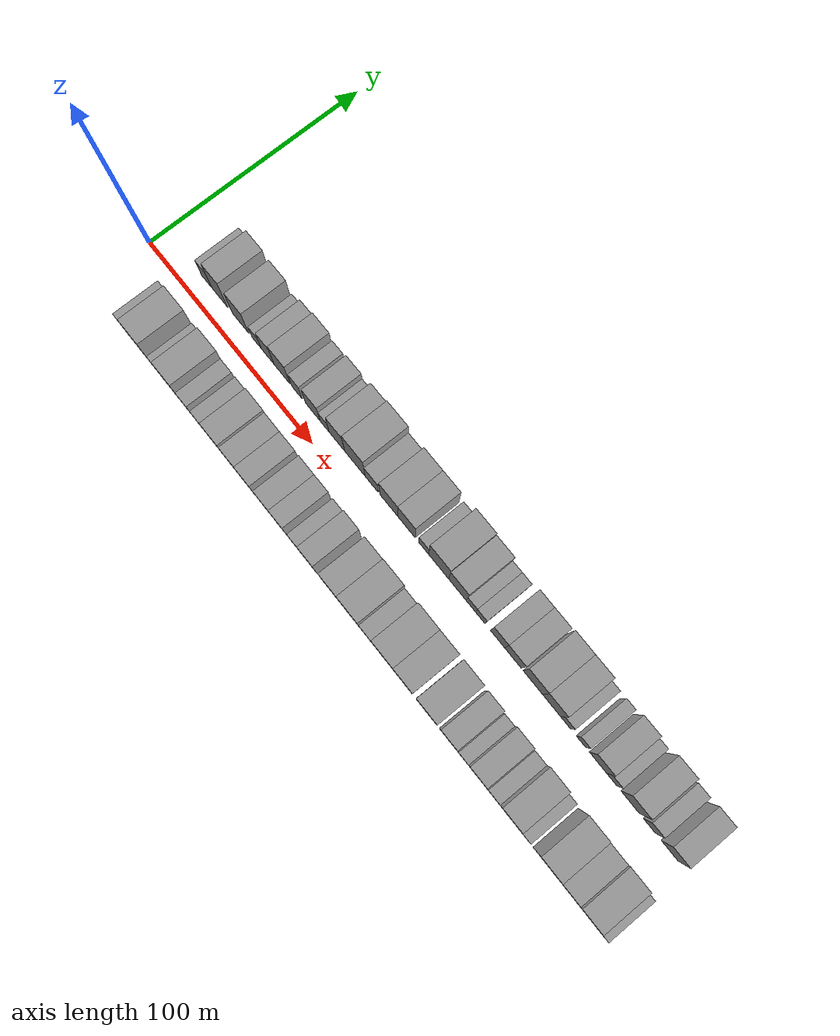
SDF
<sdf version="1.6">
 <world name="default">
  <scene>
   <sky><clouds><speed>12</speed></clouds></sky>
   <ambient>0.4 0.4 0.4 1</ambient>
   <background>0.7 0.7 0.7 1</background>
   <shadows>1</shadows>
  </scene>
  <gravity>0 0 -9.8066</gravity>
  <magnetic_field>6e-06 2.3e-05 -4.2e-05</magnetic_field>
  <physics default="0" name="default_physics" type="ode">
   <ode>
    <solver>
     <type>quick</type>
     <iters>10</iters>
     <sor>1.0</sor>
     <use_dynamic_moi_rescaling>0</use_dynamic_moi_rescaling>
    </solver>
    <constraints>
     <cfm>0</cfm>
     <erp>0.2</erp>
     <contact_max_correcting_vel>100</contact_max_correcting_vel>
     <contact_surface_layer>0.001</contact_surface_layer>
    </constraints>
   </ode>
   <max_step_size>0.004</max_step_size>
   <real_time_factor>1</real_time_factor>
   <real_time_update_rate>250</real_time_update_rate>
  </physics>
  <light name="sun" type="directional">
   <pose>0 0 10 0 0 0</pose>
   <diffuse>0.8 0.8 0.8 1</diffuse>
   <specular>0.2 0.2 0.2 1</specular>
   <attenuation>
    <range>1000</range>
    <constant>0.9</constant>
    <linear>0.01</linear>
    <quadratic>0.001</quadratic>
   </attenuation>
   <direction>-0.5 0.1 -0.9</direction>
  </light>
  <model name="building_1">
   <static>1</static>
   <pose>26.2330 17.5000 0 0.000000 0.000000 1.570796</pose>
   <link name="link">
    <pose>0 0 7.50 0 0 0</pose>
    <collision name="collision"><geometry><box><size>20.0000 6.4660 15.0000</size></box></geometry></collision>
    <visual name="visual">
     <cast_shadows>0</cast_shadows>
     <geometry><box><size>20.0000 6.4660 15.0000</size></box></geometry>
     <material>
      <script>
       <uri>model://grey_wall/materials/scripts</uri>
       <uri>model://grey_wall/materials/textures</uri>
       <name>vrc/grey_wall</name>
      </script>
     </material>
    </visual>
   </link>
  </model>
  <model name="building_2">
   <static>1</static>
   <pose>34.3115 17.5000 0 0.000000 0.000000 1.570796</pose>
   <link name="link">
    <pose>0 0 12.00 0 0 0</pose>
    <collision name="collision"><geometry><box><size>20.0000 9.6911 24.0000</size></box></geometry></collision>
    <visual name="visual">
     <cast_shadows>0</cast_shadows>
     <geometry><box><size>20.0000 9.6911 24.0000</size></box></geometry>
     <material>
      <script>
       <uri>model://grey_wall/materials/scripts</uri>
       <uri>model://grey_wall/materials/textures</uri>
       <name>vrc/grey_wall</name>
      </script>
     </material>
    </visual>
   </link>
  </model>
  <model name="building_3">
   <static>1</static>
   <pose>47.1409 17.5000 0 0.000000 0.000000 1.570796</pose>
   <link name="link">
    <pose>0 0 10.50 0 0 0</pose>
    <collision name="collision"><geometry><box><size>20.0000 9.9678 21.0000</size></box></geometry></collision>
    <visual name="visual">
     <cast_shadows>0</cast_shadows>
     <geometry><box><size>20.0000 9.9678 21.0000</size></box></geometry>
     <material>
      <script>
       <uri>model://grey_wall/materials/scripts</uri>
       <uri>model://grey_wall/materials/textures</uri>
       <name>vrc/grey_wall</name>
      </script>
     </material>
    </visual>
   </link>
  </model>
  <model name="building_4">
   <static>1</static>
   <pose>56.9774 17.5000 0 0.000000 0.000000 1.570796</pose>
   <link name="link">
    <pose>0 0 6.00 0 0 0</pose>
    <collision name="collision"><geometry><box><size>20.0000 5.7051 12.0000</size></box></geometry></collision>
    <visual name="visual">
     <cast_shadows>0</cast_shadows>
     <geometry><box><size>20.0000 5.7051 12.0000</size></box></geometry>
     <material>
      <script>
       <uri>model://grey_wall/materials/scripts</uri>
       <uri>model://grey_wall/materials/textures</uri>
       <name>vrc/grey_wall</name>
      </script>
     </material>
    </visual>
   </link>
  </model>
  <model name="building_5">
   <static>1</static>
   <pose>63.6528 17.5000 0 0.000000 0.000000 1.570796</pose>
   <link name="link">
    <pose>0 0 9.00 0 0 0</pose>
    <collision name="collision"><geometry><box><size>20.0000 7.6458 18.0000</size></box></geometry></collision>
    <visual name="visual">
     <cast_shadows>0</cast_shadows>
     <geometry><box><size>20.0000 7.6458 18.0000</size></box></geometry>
     <material>
      <script>
       <uri>model://grey_wall/materials/scripts</uri>
       <uri>model://grey_wall/materials/textures</uri>
       <name>vrc/grey_wall</name>
      </script>
     </material>
    </visual>
   </link>
  </model>
  <model name="building_6">
   <static>1</static>
   <pose>72.3122 17.5000 0 0.000000 0.000000 1.570796</pose>
   <link name="link">
    <pose>0 0 10.50 0 0 0</pose>
    <collision name="collision"><geometry><box><size>20.0000 9.6732 21.0000</size></box></geometry></collision>
    <visual name="visual">
     <cast_shadows>0</cast_shadows>
     <geometry><box><size>20.0000 9.6732 21.0000</size></box></geometry>
     <material>
      <script>
       <uri>model://grey_wall/materials/scripts</uri>
       <uri>model://grey_wall/materials/textures</uri>
       <name>vrc/grey_wall</name>
      </script>
     </material>
    </visual>
   </link>
  </model>
  <model name="building_7">
   <static>1</static>
   <pose>81.2655 17.5000 0 0.000000 0.000000 1.570796</pose>
   <link name="link">
    <pose>0 0 7.50 0 0 0</pose>
    <collision name="collision"><geometry><box><size>20.0000 6.2334 15.0000</size></box></geometry></collision>
    <visual name="visual">
     <cast_shadows>0</cast_shadows>
     <geometry><box><size>20.0000 6.2334 15.0000</size></box></geometry>
     <material>
      <script>
       <uri>model://grey_wall/materials/scripts</uri>
       <uri>model://grey_wall/materials/textures</uri>
       <name>vrc/grey_wall</name>
      </script>
     </material>
    </visual>
   </link>
  </model>
  <model name="building_8">
   <static>1</static>
   <pose>90.7650 17.5000 0 0.000000 0.000000 1.570796</pose>
   <link name="link">
    <pose>0 0 9.00 0 0 0</pose>
    <collision name="collision"><geometry><box><size>20.0000 8.7655 18.0000</size></box></geometry></collision>
    <visual name="visual">
     <cast_shadows>0</cast_shadows>
     <geometry><box><size>20.0000 8.7655 18.0000</size></box></geometry>
     <material>
      <script>
       <uri>model://grey_wall/materials/scripts</uri>
       <uri>model://grey_wall/materials/textures</uri>
       <name>vrc/grey_wall</name>
      </script>
     </material>
    </visual>
   </link>
  </model>
  <model name="building_9">
   <static>1</static>
   <pose>97.8307 17.5000 0 0.000000 0.000000 1.570796</pose>
   <link name="link">
    <pose>0 0 6.00 0 0 0</pose>
    <collision name="collision"><geometry><box><size>20.0000 5.3659 12.0000</size></box></geometry></collision>
    <visual name="visual">
     <cast_shadows>0</cast_shadows>
     <geometry><box><size>20.0000 5.3659 12.0000</size></box></geometry>
     <material>
      <script>
       <uri>model://grey_wall/materials/scripts</uri>
       <uri>model://grey_wall/materials/textures</uri>
       <name>vrc/grey_wall</name>
      </script>
     </material>
    </visual>
   </link>
  </model>
  <model name="building_10">
   <static>1</static>
   <pose>105.1166 17.5000 0 0.000000 0.000000 1.570796</pose>
   <link name="link">
    <pose>0 0 10.50 0 0 0</pose>
    <collision name="collision"><geometry><box><size>20.0000 9.2060 21.0000</size></box></geometry></collision>
    <visual name="visual">
     <cast_shadows>0</cast_shadows>
     <geometry><box><size>20.0000 9.2060 21.0000</size></box></geometry>
     <material>
      <script>
       <uri>model://grey_wall/materials/scripts</uri>
       <uri>model://grey_wall/materials/textures</uri>
       <name>vrc/grey_wall</name>
      </script>
     </material>
    </visual>
   </link>
  </model>
  <model name="building_11">
   <static>1</static>
   <pose>115.6158 17.5000 0 0.000000 0.000000 1.570796</pose>
   <link name="link">
    <pose>0 0 12.00 0 0 0</pose>
    <collision name="collision"><geometry><box><size>20.0000 11.7923 24.0000</size></box></geometry></collision>
    <visual name="visual">
     <cast_shadows>0</cast_shadows>
     <geometry><box><size>20.0000 11.7923 24.0000</size></box></geometry>
     <material>
      <script>
       <uri>model://grey_wall/materials/scripts</uri>
       <uri>model://grey_wall/materials/textures</uri>
       <name>vrc/grey_wall</name>
      </script>
     </material>
    </visual>
   </link>
  </model>
  <model name="building_12">
   <static>1</static>
   <pose>125.2606 17.5000 0 0.000000 0.000000 1.570796</pose>
   <link name="link">
    <pose>0 0 7.50 0 0 0</pose>
    <collision name="collision"><geometry><box><size>20.0000 7.4973 15.0000</size></box></geometry></collision>
    <visual name="visual">
     <cast_shadows>0</cast_shadows>
     <geometry><box><size>20.0000 7.4973 15.0000</size></box></geometry>
     <material>
      <script>
       <uri>model://grey_wall/materials/scripts</uri>
       <uri>model://grey_wall/materials/textures</uri>
       <name>vrc/grey_wall</name>
      </script>
     </material>
    </visual>
   </link>
  </model>
  <model name="building_13">
   <static>1</static>
   <pose>135.1991 17.5000 0 0.000000 0.000000 1.570796</pose>
   <link name="link">
    <pose>0 0 10.50 0 0 0</pose>
    <collision name="collision"><geometry><box><size>20.0000 10.3797 21.0000</size></box></geometry></collision>
    <visual name="visual">
     <cast_shadows>0</cast_shadows>
     <geometry><box><size>20.0000 10.3797 21.0000</size></box></geometry>
     <material>
      <script>
       <uri>model://grey_wall/materials/scripts</uri>
       <uri>model://grey_wall/materials/textures</uri>
       <name>vrc/grey_wall</name>
      </script>
     </material>
    </visual>
   </link>
  </model>
  <model name="building_14">
   <static>1</static>
   <pose>145.2602 17.5000 0 0.000000 0.000000 1.570796</pose>
   <link name="link">
    <pose>0 0 10.50 0 0 0</pose>
    <collision name="collision"><geometry><box><size>20.0000 9.7425 21.0000</size></box></geometry></collision>
    <visual name="visual">
     <cast_shadows>0</cast_shadows>
     <geometry><box><size>20.0000 9.7425 21.0000</size></box></geometry>
     <material>
      <script>
       <uri>model://grey_wall/materials/scripts</uri>
       <uri>model://grey_wall/materials/textures</uri>
       <name>vrc/grey_wall</name>
      </script>
     </material>
    </visual>
   </link>
  </model>
  <model name="building_15">
   <static>1</static>
   <pose>154.9578 17.5000 0 0.000000 0.000000 1.570796</pose>
   <link name="link">
    <pose>0 0 6.00 0 0 0</pose>
    <collision name="collision"><geometry><box><size>20.0000 5.6526 12.0000</size></box></geometry></collision>
    <visual name="visual">
     <cast_shadows>0</cast_shadows>
     <geometry><box><size>20.0000 5.6526 12.0000</size></box></geometry>
     <material>
      <script>
       <uri>model://grey_wall/materials/scripts</uri>
       <uri>model://grey_wall/materials/textures</uri>
       <name>vrc/grey_wall</name>
      </script>
     </material>
    </visual>
   </link>
  </model>
  <model name="building_16">
   <static>1</static>
   <pose>163.3459 17.5000 0 0.000000 0.000000 1.570796</pose>
   <link name="link">
    <pose>0 0 12.00 0 0 0</pose>
    <collision name="collision"><geometry><box><size>20.0000 11.1237 24.0000</size></box></geometry></collision>
    <visual name="visual">
     <cast_shadows>0</cast_shadows>
     <geometry><box><size>20.0000 11.1237 24.0000</size></box></geometry>
     <material>
      <script>
       <uri>model://grey_wall/materials/scripts</uri>
       <uri>model://grey_wall/materials/textures</uri>
       <name>vrc/grey_wall</name>
      </script>
     </material>
    </visual>
   </link>
  </model>
  <model name="building_17">
   <static>1</static>
   <pose>173.8073 17.5000 0 0.000000 0.000000 1.570796</pose>
   <link name="link">
    <pose>0 0 10.50 0 0 0</pose>
    <collision name="collision"><geometry><box><size>20.0000 9.7992 21.0000</size></box></geometry></collision>
    <visual name="visual">
     <cast_shadows>0</cast_shadows>
     <geometry><box><size>20.0000 9.7992 21.0000</size></box></geometry>
     <material>
      <script>
       <uri>model://grey_wall/materials/scripts</uri>
       <uri>model://grey_wall/materials/textures</uri>
       <name>vrc/grey_wall</name>
      </script>
     </material>
    </visual>
   </link>
  </model>
  <model name="building_18">
   <static>1</static>
   <pose>181.2581 17.5000 0 0.000000 0.000000 1.570796</pose>
   <link name="link">
    <pose>0 0 6.00 0 0 0</pose>
    <collision name="collision"><geometry><box><size>20.0000 5.1023 12.0000</size></box></geometry></collision>
    <visual name="visual">
     <cast_shadows>0</cast_shadows>
     <geometry><box><size>20.0000 5.1023 12.0000</size></box></geometry>
     <material>
      <script>
       <uri>model://grey_wall/materials/scripts</uri>
       <uri>model://grey_wall/materials/textures</uri>
       <name>vrc/grey_wall</name>
      </script>
     </material>
    </visual>
   </link>
  </model>
  <model name="building_19">
   <static>1</static>
   <pose>186.4269 17.5000 0 0.000000 0.000000 1.570796</pose>
   <link name="link">
    <pose>0 0 6.00 0 0 0</pose>
    <collision name="collision"><geometry><box><size>20.0000 5.2354 12.0000</size></box></geometry></collision>
    <visual name="visual">
     <cast_shadows>0</cast_shadows>
     <geometry><box><size>20.0000 5.2354 12.0000</size></box></geometry>
     <material>
      <script>
       <uri>model://grey_wall/materials/scripts</uri>
       <uri>model://grey_wall/materials/textures</uri>
       <name>vrc/grey_wall</name>
      </script>
     </material>
    </visual>
   </link>
  </model>
  <model name="building_20">
   <static>1</static>
   <pose>195.9037 17.5000 0 0.000000 0.000000 1.570796</pose>
   <link name="link">
    <pose>0 0 9.00 0 0 0</pose>
    <collision name="collision"><geometry><box><size>20.0000 7.7182 18.0000</size></box></geometry></collision>
    <visual name="visual">
     <cast_shadows>0</cast_shadows>
     <geometry><box><size>20.0000 7.7182 18.0000</size></box></geometry>
     <material>
      <script>
       <uri>model://grey_wall/materials/scripts</uri>
       <uri>model://grey_wall/materials/textures</uri>
       <name>vrc/grey_wall</name>
      </script>
     </material>
    </visual>
   </link>
  </model>
  <model name="building_21">
   <static>1</static>
   <pose>204.2442 17.5000 0 0.000000 0.000000 1.570796</pose>
   <link name="link">
    <pose>0 0 9.00 0 0 0</pose>
    <collision name="collision"><geometry><box><size>20.0000 8.9629 18.0000</size></box></geometry></collision>
    <visual name="visual">
     <cast_shadows>0</cast_shadows>
     <geometry><box><size>20.0000 8.9629 18.0000</size></box></geometry>
     <material>
      <script>
       <uri>model://grey_wall/materials/scripts</uri>
       <uri>model://grey_wall/materials/textures</uri>
       <name>vrc/grey_wall</name>
      </script>
     </material>
    </visual>
   </link>
  </model>
  <model name="building_22">
   <static>1</static>
   <pose>214.8280 17.5000 0 0.000000 0.000000 1.570796</pose>
   <link name="link">
    <pose>0 0 10.50 0 0 0</pose>
    <collision name="collision"><geometry><box><size>20.0000 10.2048 21.0000</size></box></geometry></collision>
    <visual name="visual">
     <cast_shadows>0</cast_shadows>
     <geometry><box><size>20.0000 10.2048 21.0000</size></box></geometry>
     <material>
      <script>
       <uri>model://grey_wall/materials/scripts</uri>
       <uri>model://grey_wall/materials/textures</uri>
       <name>vrc/grey_wall</name>
      </script>
     </material>
    </visual>
   </link>
  </model>
  <model name="building_23">
   <static>1</static>
   <pose>224.8316 17.5000 0 0.000000 0.000000 1.570796</pose>
   <link name="link">
    <pose>0 0 10.50 0 0 0</pose>
    <collision name="collision"><geometry><box><size>20.0000 9.8024 21.0000</size></box></geometry></collision>
    <visual name="visual">
     <cast_shadows>0</cast_shadows>
     <geometry><box><size>20.0000 9.8024 21.0000</size></box></geometry>
     <material>
      <script>
       <uri>model://grey_wall/materials/scripts</uri>
       <uri>model://grey_wall/materials/textures</uri>
       <name>vrc/grey_wall</name>
      </script>
     </material>
    </visual>
   </link>
  </model>
  <model name="building_24">
   <static>1</static>
   <pose>232.3631 17.5000 0 0.000000 0.000000 1.570796</pose>
   <link name="link">
    <pose>0 0 6.00 0 0 0</pose>
    <collision name="collision"><geometry><box><size>20.0000 5.2606 12.0000</size></box></geometry></collision>
    <visual name="visual">
     <cast_shadows>0</cast_shadows>
     <geometry><box><size>20.0000 5.2606 12.0000</size></box></geometry>
     <material>
      <script>
       <uri>model://grey_wall/materials/scripts</uri>
       <uri>model://grey_wall/materials/textures</uri>
       <name>vrc/grey_wall</name>
      </script>
     </material>
    </visual>
   </link>
  </model>
  <model name="building_25">
   <static>1</static>
   <pose>240.4397 17.5000 0 0.000000 0.000000 1.570796</pose>
   <link name="link">
    <pose>0 0 6.00 0 0 0</pose>
    <collision name="collision"><geometry><box><size>20.0000 4.8925 12.0000</size></box></geometry></collision>
    <visual name="visual">
     <cast_shadows>0</cast_shadows>
     <geometry><box><size>20.0000 4.8925 12.0000</size></box></geometry>
     <material>
      <script>
       <uri>model://grey_wall/materials/scripts</uri>
       <uri>model://grey_wall/materials/textures</uri>
       <name>vrc/grey_wall</name>
      </script>
     </material>
    </visual>
   </link>
  </model>
  <model name="building_26">
   <static>1</static>
   <pose>249.3211 17.5000 0 0.000000 0.000000 1.570796</pose>
   <link name="link">
    <pose>0 0 9.00 0 0 0</pose>
    <collision name="collision"><geometry><box><size>20.0000 8.8703 18.0000</size></box></geometry></collision>
    <visual name="visual">
     <cast_shadows>0</cast_shadows>
     <geometry><box><size>20.0000 8.8703 18.0000</size></box></geometry>
     <material>
      <script>
       <uri>model://grey_wall/materials/scripts</uri>
       <uri>model://grey_wall/materials/textures</uri>
       <name>vrc/grey_wall</name>
      </script>
     </material>
    </visual>
   </link>
  </model>
  <model name="building_27">
   <static>1</static>
   <pose>256.4935 17.5000 0 0.000000 0.000000 1.570796</pose>
   <link name="link">
    <pose>0 0 6.00 0 0 0</pose>
    <collision name="collision"><geometry><box><size>20.0000 5.4745 12.0000</size></box></geometry></collision>
    <visual name="visual">
     <cast_shadows>0</cast_shadows>
     <geometry><box><size>20.0000 5.4745 12.0000</size></box></geometry>
     <material>
      <script>
       <uri>model://grey_wall/materials/scripts</uri>
       <uri>model://grey_wall/materials/textures</uri>
       <name>vrc/grey_wall</name>
      </script>
     </material>
    </visual>
   </link>
  </model>
  <model name="building_28">
   <static>1</static>
   <pose>265.9769 17.5000 0 0.000000 0.000000 1.570796</pose>
   <link name="link">
    <pose>0 0 10.50 0 0 0</pose>
    <collision name="collision"><geometry><box><size>20.0000 9.4924 21.0000</size></box></geometry></collision>
    <visual name="visual">
     <cast_shadows>0</cast_shadows>
     <geometry><box><size>20.0000 9.4924 21.0000</size></box></geometry>
     <material>
      <script>
       <uri>model://grey_wall/materials/scripts</uri>
       <uri>model://grey_wall/materials/textures</uri>
       <name>vrc/grey_wall</name>
      </script>
     </material>
    </visual>
   </link>
  </model>
  <model name="building_29">
   <static>1</static>
   <pose>275.7890 17.5000 0 0.000000 0.000000 1.570796</pose>
   <link name="link">
    <pose>0 0 7.50 0 0 0</pose>
    <collision name="collision"><geometry><box><size>20.0000 6.1318 15.0000</size></box></geometry></collision>
    <visual name="visual">
     <cast_shadows>0</cast_shadows>
     <geometry><box><size>20.0000 6.1318 15.0000</size></box></geometry>
     <material>
      <script>
       <uri>model://grey_wall/materials/scripts</uri>
       <uri>model://grey_wall/materials/textures</uri>
       <name>vrc/grey_wall</name>
      </script>
     </material>
    </visual>
   </link>
  </model>
  <model name="building_30">
   <static>1</static>
   <pose>286.0715 17.5000 0 0.000000 0.000000 1.570796</pose>
   <link name="link">
    <pose>0 0 9.00 0 0 0</pose>
    <collision name="collision"><geometry><box><size>20.0000 8.4333 18.0000</size></box></geometry></collision>
    <visual name="visual">
     <cast_shadows>0</cast_shadows>
     <geometry><box><size>20.0000 8.4333 18.0000</size></box></geometry>
     <material>
      <script>
       <uri>model://grey_wall/materials/scripts</uri>
       <uri>model://grey_wall/materials/textures</uri>
       <name>vrc/grey_wall</name>
      </script>
     </material>
    </visual>
   </link>
  </model>
  <model name="building_31">
   <static>1</static>
   <pose>24.4280 -17.5000 0 0.000000 0.000000 1.570796</pose>
   <link name="link">
    <pose>0 0 7.50 0 0 0</pose>
    <collision name="collision"><geometry><box><size>20.0000 6.8561 15.0000</size></box></geometry></collision>
    <visual name="visual">
     <cast_shadows>0</cast_shadows>
     <geometry><box><size>20.0000 6.8561 15.0000</size></box></geometry>
     <material>
      <script>
       <uri>model://grey_wall/materials/scripts</uri>
       <uri>model://grey_wall/materials/textures</uri>
       <name>vrc/grey_wall</name>
      </script>
     </material>
    </visual>
   </link>
  </model>
  <model name="building_32">
   <static>1</static>
   <pose>33.6956 -17.5000 0 0.000000 0.000000 1.570796</pose>
   <link name="link">
    <pose>0 0 12.00 0 0 0</pose>
    <collision name="collision"><geometry><box><size>20.0000 11.6790 24.0000</size></box></geometry></collision>
    <visual name="visual">
     <cast_shadows>0</cast_shadows>
     <geometry><box><size>20.0000 11.6790 24.0000</size></box></geometry>
     <material>
      <script>
       <uri>model://grey_wall/materials/scripts</uri>
       <uri>model://grey_wall/materials/textures</uri>
       <name>vrc/grey_wall</name>
      </script>
     </material>
    </visual>
   </link>
  </model>
  <model name="building_33">
   <static>1</static>
   <pose>44.6261 -17.5000 0 0.000000 0.000000 1.570796</pose>
   <link name="link">
    <pose>0 0 7.50 0 0 0</pose>
    <collision name="collision"><geometry><box><size>20.0000 6.1820 15.0000</size></box></geometry></collision>
    <visual name="visual">
     <cast_shadows>0</cast_shadows>
     <geometry><box><size>20.0000 6.1820 15.0000</size></box></geometry>
     <material>
      <script>
       <uri>model://grey_wall/materials/scripts</uri>
       <uri>model://grey_wall/materials/textures</uri>
       <name>vrc/grey_wall</name>
      </script>
     </material>
    </visual>
   </link>
  </model>
  <model name="building_34">
   <static>1</static>
   <pose>53.1713 -17.5000 0 0.000000 0.000000 1.570796</pose>
   <link name="link">
    <pose>0 0 12.00 0 0 0</pose>
    <collision name="collision"><geometry><box><size>20.0000 10.9084 24.0000</size></box></geometry></collision>
    <visual name="visual">
     <cast_shadows>0</cast_shadows>
     <geometry><box><size>20.0000 10.9084 24.0000</size></box></geometry>
     <material>
      <script>
       <uri>model://grey_wall/materials/scripts</uri>
       <uri>model://grey_wall/materials/textures</uri>
       <name>vrc/grey_wall</name>
      </script>
     </material>
    </visual>
   </link>
  </model>
  <model name="building_35">
   <static>1</static>
   <pose>61.9210 -17.5000 0 0.000000 0.000000 1.570796</pose>
   <link name="link">
    <pose>0 0 7.50 0 0 0</pose>
    <collision name="collision"><geometry><box><size>20.0000 6.5908 15.0000</size></box></geometry></collision>
    <visual name="visual">
     <cast_shadows>0</cast_shadows>
     <geometry><box><size>20.0000 6.5908 15.0000</size></box></geometry>
     <material>
      <script>
       <uri>model://grey_wall/materials/scripts</uri>
       <uri>model://grey_wall/materials/textures</uri>
       <name>vrc/grey_wall</name>
      </script>
     </material>
    </visual>
   </link>
  </model>
  <model name="building_36">
   <static>1</static>
   <pose>70.4667 -17.5000 0 0.000000 0.000000 1.570796</pose>
   <link name="link">
    <pose>0 0 7.50 0 0 0</pose>
    <collision name="collision"><geometry><box><size>20.0000 6.5007 15.0000</size></box></geometry></collision>
    <visual name="visual">
     <cast_shadows>0</cast_shadows>
     <geometry><box><size>20.0000 6.5007 15.0000</size></box></geometry>
     <material>
      <script>
       <uri>model://grey_wall/materials/scripts</uri>
       <uri>model://grey_wall/materials/textures</uri>
       <name>vrc/grey_wall</name>
      </script>
     </material>
    </visual>
   </link>
  </model>
  <model name="building_37">
   <static>1</static>
   <pose>79.7888 -17.5000 0 0.000000 0.000000 1.570796</pose>
   <link name="link">
    <pose>0 0 10.50 0 0 0</pose>
    <collision name="collision"><geometry><box><size>20.0000 10.1435 21.0000</size></box></geometry></collision>
    <visual name="visual">
     <cast_shadows>0</cast_shadows>
     <geometry><box><size>20.0000 10.1435 21.0000</size></box></geometry>
     <material>
      <script>
       <uri>model://grey_wall/materials/scripts</uri>
       <uri>model://grey_wall/materials/textures</uri>
       <name>vrc/grey_wall</name>
      </script>
     </material>
    </visual>
   </link>
  </model>
  <model name="building_38">
   <static>1</static>
   <pose>89.2583 -17.5000 0 0.000000 0.000000 1.570796</pose>
   <link name="link">
    <pose>0 0 9.00 0 0 0</pose>
    <collision name="collision"><geometry><box><size>20.0000 8.7953 18.0000</size></box></geometry></collision>
    <visual name="visual">
     <cast_shadows>0</cast_shadows>
     <geometry><box><size>20.0000 8.7953 18.0000</size></box></geometry>
     <material>
      <script>
       <uri>model://grey_wall/materials/scripts</uri>
       <uri>model://grey_wall/materials/textures</uri>
       <name>vrc/grey_wall</name>
      </script>
     </material>
    </visual>
   </link>
  </model>
  <model name="building_39">
   <static>1</static>
   <pose>98.0843 -17.5000 0 0.000000 0.000000 1.570796</pose>
   <link name="link">
    <pose>0 0 9.00 0 0 0</pose>
    <collision name="collision"><geometry><box><size>20.0000 8.8566 18.0000</size></box></geometry></collision>
    <visual name="visual">
     <cast_shadows>0</cast_shadows>
     <geometry><box><size>20.0000 8.8566 18.0000</size></box></geometry>
     <material>
      <script>
       <uri>model://grey_wall/materials/scripts</uri>
       <uri>model://grey_wall/materials/textures</uri>
       <name>vrc/grey_wall</name>
      </script>
     </material>
    </visual>
   </link>
  </model>
  <model name="building_40">
   <static>1</static>
   <pose>108.8701 -17.5000 0 0.000000 0.000000 1.570796</pose>
   <link name="link">
    <pose>0 0 9.00 0 0 0</pose>
    <collision name="collision"><geometry><box><size>20.0000 8.7151 18.0000</size></box></geometry></collision>
    <visual name="visual">
     <cast_shadows>0</cast_shadows>
     <geometry><box><size>20.0000 8.7151 18.0000</size></box></geometry>
     <material>
      <script>
       <uri>model://grey_wall/materials/scripts</uri>
       <uri>model://grey_wall/materials/textures</uri>
       <name>vrc/grey_wall</name>
      </script>
     </material>
    </visual>
   </link>
  </model>
  <model name="building_41">
   <static>1</static>
   <pose>117.1824 -17.5000 0 0.000000 0.000000 1.570796</pose>
   <link name="link">
    <pose>0 0 9.00 0 0 0</pose>
    <collision name="collision"><geometry><box><size>20.0000 7.9095 18.0000</size></box></geometry></collision>
    <visual name="visual">
     <cast_shadows>0</cast_shadows>
     <geometry><box><size>20.0000 7.9095 18.0000</size></box></geometry>
     <material>
      <script>
       <uri>model://grey_wall/materials/scripts</uri>
       <uri>model://grey_wall/materials/textures</uri>
       <name>vrc/grey_wall</name>
      </script>
     </material>
    </visual>
   </link>
  </model>
  <model name="building_42">
   <static>1</static>
   <pose>126.4481 -17.5000 0 0.000000 0.000000 1.570796</pose>
   <link name="link">
    <pose>0 0 7.50 0 0 0</pose>
    <collision name="collision"><geometry><box><size>20.0000 6.6217 15.0000</size></box></geometry></collision>
    <visual name="visual">
     <cast_shadows>0</cast_shadows>
     <geometry><box><size>20.0000 6.6217 15.0000</size></box></geometry>
     <material>
      <script>
       <uri>model://grey_wall/materials/scripts</uri>
       <uri>model://grey_wall/materials/textures</uri>
       <name>vrc/grey_wall</name>
      </script>
     </material>
    </visual>
   </link>
  </model>
  <model name="building_43">
   <static>1</static>
   <pose>134.0461 -17.5000 0 0.000000 0.000000 1.570796</pose>
   <link name="link">
    <pose>0 0 10.50 0 0 0</pose>
    <collision name="collision"><geometry><box><size>20.0000 8.5743 21.0000</size></box></geometry></collision>
    <visual name="visual">
     <cast_shadows>0</cast_shadows>
     <geometry><box><size>20.0000 8.5743 21.0000</size></box></geometry>
     <material>
      <script>
       <uri>model://grey_wall/materials/scripts</uri>
       <uri>model://grey_wall/materials/textures</uri>
       <name>vrc/grey_wall</name>
      </script>
     </material>
    </visual>
   </link>
  </model>
  <model name="building_44">
   <static>1</static>
   <pose>146.3909 -17.5000 0 0.000000 0.000000 1.570796</pose>
   <link name="link">
    <pose>0 0 10.50 0 0 0</pose>
    <collision name="collision"><geometry><box><size>20.0000 10.1155 21.0000</size></box></geometry></collision>
    <visual name="visual">
     <cast_shadows>0</cast_shadows>
     <geometry><box><size>20.0000 10.1155 21.0000</size></box></geometry>
     <material>
      <script>
       <uri>model://grey_wall/materials/scripts</uri>
       <uri>model://grey_wall/materials/textures</uri>
       <name>vrc/grey_wall</name>
      </script>
     </material>
    </visual>
   </link>
  </model>
  <model name="building_45">
   <static>1</static>
   <pose>157.1561 -17.5000 0 0.000000 0.000000 1.570796</pose>
   <link name="link">
    <pose>0 0 12.00 0 0 0</pose>
    <collision name="collision"><geometry><box><size>20.0000 11.4148 24.0000</size></box></geometry></collision>
    <visual name="visual">
     <cast_shadows>0</cast_shadows>
     <geometry><box><size>20.0000 11.4148 24.0000</size></box></geometry>
     <material>
      <script>
       <uri>model://grey_wall/materials/scripts</uri>
       <uri>model://grey_wall/materials/textures</uri>
       <name>vrc/grey_wall</name>
      </script>
     </material>
    </visual>
   </link>
  </model>
  <model name="building_46">
   <static>1</static>
   <pose>166.4401 -17.5000 0 0.000000 0.000000 1.570796</pose>
   <link name="link">
    <pose>0 0 7.50 0 0 0</pose>
    <collision name="collision"><geometry><box><size>20.0000 7.1533 15.0000</size></box></geometry></collision>
    <visual name="visual">
     <cast_shadows>0</cast_shadows>
     <geometry><box><size>20.0000 7.1533 15.0000</size></box></geometry>
     <material>
      <script>
       <uri>model://grey_wall/materials/scripts</uri>
       <uri>model://grey_wall/materials/textures</uri>
       <name>vrc/grey_wall</name>
      </script>
     </material>
    </visual>
   </link>
  </model>
  <model name="building_47">
   <static>1</static>
   <pose>175.7845 -17.5000 0 0.000000 0.000000 1.570796</pose>
   <link name="link">
    <pose>0 0 12.00 0 0 0</pose>
    <collision name="collision"><geometry><box><size>20.0000 11.5354 24.0000</size></box></geometry></collision>
    <visual name="visual">
     <cast_shadows>0</cast_shadows>
     <geometry><box><size>20.0000 11.5354 24.0000</size></box></geometry>
     <material>
      <script>
       <uri>model://grey_wall/materials/scripts</uri>
       <uri>model://grey_wall/materials/textures</uri>
       <name>vrc/grey_wall</name>
      </script>
     </material>
    </visual>
   </link>
  </model>
  <model name="building_48">
   <static>1</static>
   <pose>186.6965 -17.5000 0 0.000000 0.000000 1.570796</pose>
   <link name="link">
    <pose>0 0 12.00 0 0 0</pose>
    <collision name="collision"><geometry><box><size>20.0000 10.2885 24.0000</size></box></geometry></collision>
    <visual name="visual">
     <cast_shadows>0</cast_shadows>
     <geometry><box><size>20.0000 10.2885 24.0000</size></box></geometry>
     <material>
      <script>
       <uri>model://grey_wall/materials/scripts</uri>
       <uri>model://grey_wall/materials/textures</uri>
       <name>vrc/grey_wall</name>
      </script>
     </material>
    </visual>
   </link>
  </model>
  <model name="building_49">
   <static>1</static>
   <pose>199.2378 -17.5000 0 0.000000 0.000000 1.570796</pose>
   <link name="link">
    <pose>0 0 12.00 0 0 0</pose>
    <collision name="collision"><geometry><box><size>20.0000 10.7942 24.0000</size></box></geometry></collision>
    <visual name="visual">
     <cast_shadows>0</cast_shadows>
     <geometry><box><size>20.0000 10.7942 24.0000</size></box></geometry>
     <material>
      <script>
       <uri>model://grey_wall/materials/scripts</uri>
       <uri>model://grey_wall/materials/textures</uri>
       <name>vrc/grey_wall</name>
      </script>
     </material>
    </visual>
   </link>
  </model>
  <model name="building_50">
   <static>1</static>
   <pose>210.9347 -17.5000 0 0.000000 0.000000 1.570796</pose>
   <link name="link">
    <pose>0 0 10.50 0 0 0</pose>
    <collision name="collision"><geometry><box><size>20.0000 8.5995 21.0000</size></box></geometry></collision>
    <visual name="visual">
     <cast_shadows>0</cast_shadows>
     <geometry><box><size>20.0000 8.5995 21.0000</size></box></geometry>
     <material>
      <script>
       <uri>model://grey_wall/materials/scripts</uri>
       <uri>model://grey_wall/materials/textures</uri>
       <name>vrc/grey_wall</name>
      </script>
     </material>
    </visual>
   </link>
  </model>
  <model name="building_51">
   <static>1</static>
   <pose>218.8745 -17.5000 0 0.000000 0.000000 1.570796</pose>
   <link name="link">
    <pose>0 0 6.00 0 0 0</pose>
    <collision name="collision"><geometry><box><size>20.0000 5.2801 12.0000</size></box></geometry></collision>
    <visual name="visual">
     <cast_shadows>0</cast_shadows>
     <geometry><box><size>20.0000 5.2801 12.0000</size></box></geometry>
     <material>
      <script>
       <uri>model://grey_wall/materials/scripts</uri>
       <uri>model://grey_wall/materials/textures</uri>
       <name>vrc/grey_wall</name>
      </script>
     </material>
    </visual>
   </link>
  </model>
  <model name="building_52">
   <static>1</static>
   <pose>225.9429 -17.5000 0 0.000000 0.000000 1.570796</pose>
   <link name="link">
    <pose>0 0 10.50 0 0 0</pose>
    <collision name="collision"><geometry><box><size>20.0000 8.8569 21.0000</size></box></geometry></collision>
    <visual name="visual">
     <cast_shadows>0</cast_shadows>
     <geometry><box><size>20.0000 8.8569 21.0000</size></box></geometry>
     <material>
      <script>
       <uri>model://grey_wall/materials/scripts</uri>
       <uri>model://grey_wall/materials/textures</uri>
       <name>vrc/grey_wall</name>
      </script>
     </material>
    </visual>
   </link>
  </model>
  <model name="building_53">
   <static>1</static>
   <pose>234.4345 -17.5000 0 0.000000 0.000000 1.570796</pose>
   <link name="link">
    <pose>0 0 7.50 0 0 0</pose>
    <collision name="collision"><geometry><box><size>20.0000 6.1263 15.0000</size></box></geometry></collision>
    <visual name="visual">
     <cast_shadows>0</cast_shadows>
     <geometry><box><size>20.0000 6.1263 15.0000</size></box></geometry>
     <material>
      <script>
       <uri>model://grey_wall/materials/scripts</uri>
       <uri>model://grey_wall/materials/textures</uri>
       <name>vrc/grey_wall</name>
      </script>
     </material>
    </visual>
   </link>
  </model>
  <model name="building_54">
   <static>1</static>
   <pose>242.5474 -17.5000 0 0.000000 0.000000 1.570796</pose>
   <link name="link">
    <pose>0 0 12.00 0 0 0</pose>
    <collision name="collision"><geometry><box><size>20.0000 10.0995 24.0000</size></box></geometry></collision>
    <visual name="visual">
     <cast_shadows>0</cast_shadows>
     <geometry><box><size>20.0000 10.0995 24.0000</size></box></geometry>
     <material>
      <script>
       <uri>model://grey_wall/materials/scripts</uri>
       <uri>model://grey_wall/materials/textures</uri>
       <name>vrc/grey_wall</name>
      </script>
     </material>
    </visual>
   </link>
  </model>
  <model name="building_55">
   <static>1</static>
   <pose>250.5507 -17.5000 0 0.000000 0.000000 1.570796</pose>
   <link name="link">
    <pose>0 0 6.00 0 0 0</pose>
    <collision name="collision"><geometry><box><size>20.0000 5.9071 12.0000</size></box></geometry></collision>
    <visual name="visual">
     <cast_shadows>0</cast_shadows>
     <geometry><box><size>20.0000 5.9071 12.0000</size></box></geometry>
     <material>
      <script>
       <uri>model://grey_wall/materials/scripts</uri>
       <uri>model://grey_wall/materials/textures</uri>
       <name>vrc/grey_wall</name>
      </script>
     </material>
    </visual>
   </link>
  </model>
  <model name="building_56">
   <static>1</static>
   <pose>261.7849 -17.5000 0 0.000000 0.000000 1.570796</pose>
   <link name="link">
    <pose>0 0 12.00 0 0 0</pose>
    <collision name="collision"><geometry><box><size>20.0000 10.5612 24.0000</size></box></geometry></collision>
    <visual name="visual">
     <cast_shadows>0</cast_shadows>
     <geometry><box><size>20.0000 10.5612 24.0000</size></box></geometry>
     <material>
      <script>
       <uri>model://grey_wall/materials/scripts</uri>
       <uri>model://grey_wall/materials/textures</uri>
       <name>vrc/grey_wall</name>
      </script>
     </material>
    </visual>
   </link>
  </model>
  <model name="building_57">
   <static>1</static>
   <pose>271.7252 -17.5000 0 0.000000 0.000000 1.570796</pose>
   <link name="link">
    <pose>0 0 10.50 0 0 0</pose>
    <collision name="collision"><geometry><box><size>20.0000 9.3195 21.0000</size></box></geometry></collision>
    <visual name="visual">
     <cast_shadows>0</cast_shadows>
     <geometry><box><size>20.0000 9.3195 21.0000</size></box></geometry>
     <material>
      <script>
       <uri>model://grey_wall/materials/scripts</uri>
       <uri>model://grey_wall/materials/textures</uri>
       <name>vrc/grey_wall</name>
      </script>
     </material>
    </visual>
   </link>
  </model>
  <model name="building_58">
   <static>1</static>
   <pose>281.4269 -17.5000 0 0.000000 0.000000 1.570796</pose>
   <link name="link">
    <pose>0 0 12.00 0 0 0</pose>
    <collision name="collision"><geometry><box><size>20.0000 10.0839 24.0000</size></box></geometry></collision>
    <visual name="visual">
     <cast_shadows>0</cast_shadows>
     <geometry><box><size>20.0000 10.0839 24.0000</size></box></geometry>
     <material>
      <script>
       <uri>model://grey_wall/materials/scripts</uri>
       <uri>model://grey_wall/materials/textures</uri>
       <name>vrc/grey_wall</name>
      </script>
     </material>
    </visual>
   </link>
  </model>
  <model name="building_59">
   <static>1</static>
   <pose>289.3110 -17.5000 0 0.000000 0.000000 1.570796</pose>
   <link name="link">
    <pose>0 0 6.00 0 0 0</pose>
    <collision name="collision"><geometry><box><size>20.0000 5.6844 12.0000</size></box></geometry></collision>
    <visual name="visual">
     <cast_shadows>0</cast_shadows>
     <geometry><box><size>20.0000 5.6844 12.0000</size></box></geometry>
     <material>
      <script>
       <uri>model://grey_wall/materials/scripts</uri>
       <uri>model://grey_wall/materials/textures</uri>
       <name>vrc/grey_wall</name>
      </script>
     </material>
    </visual>
   </link>
  </model>
 </world>
</sdf>
